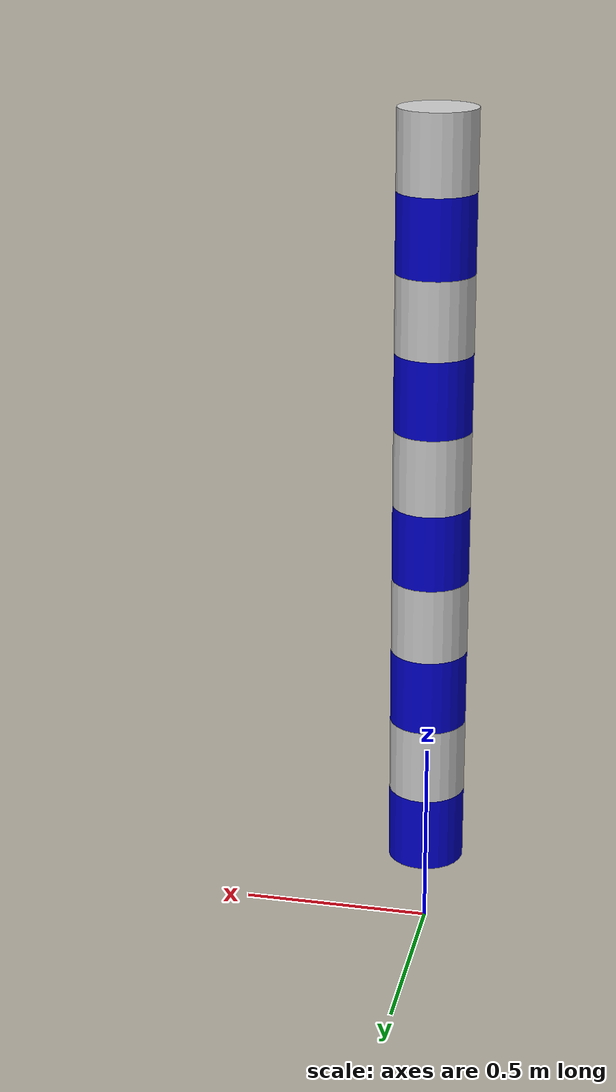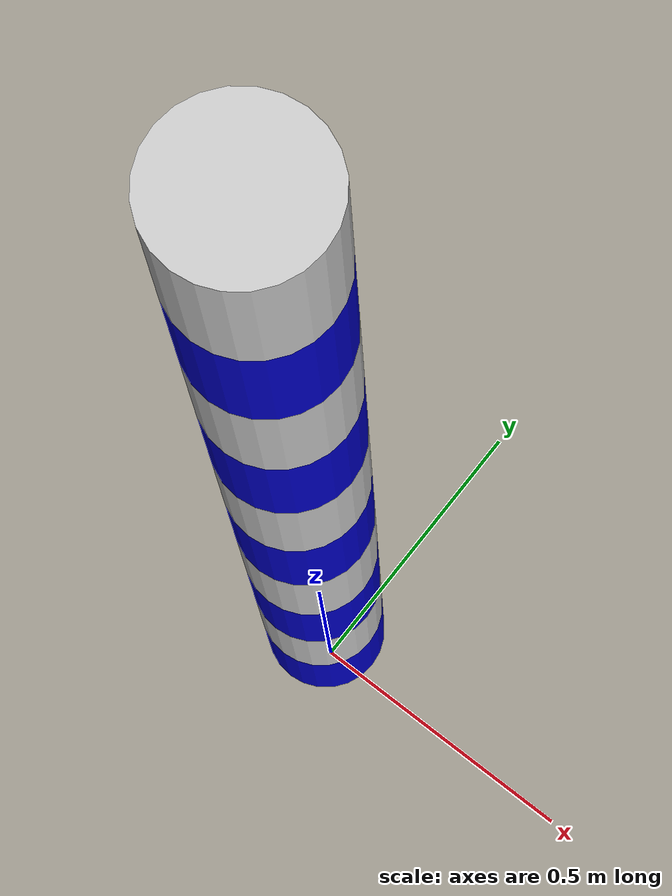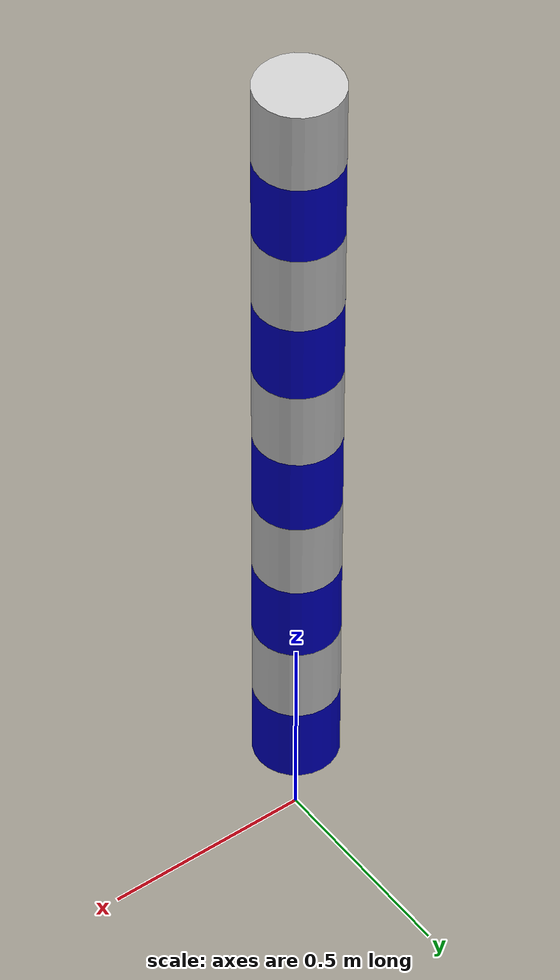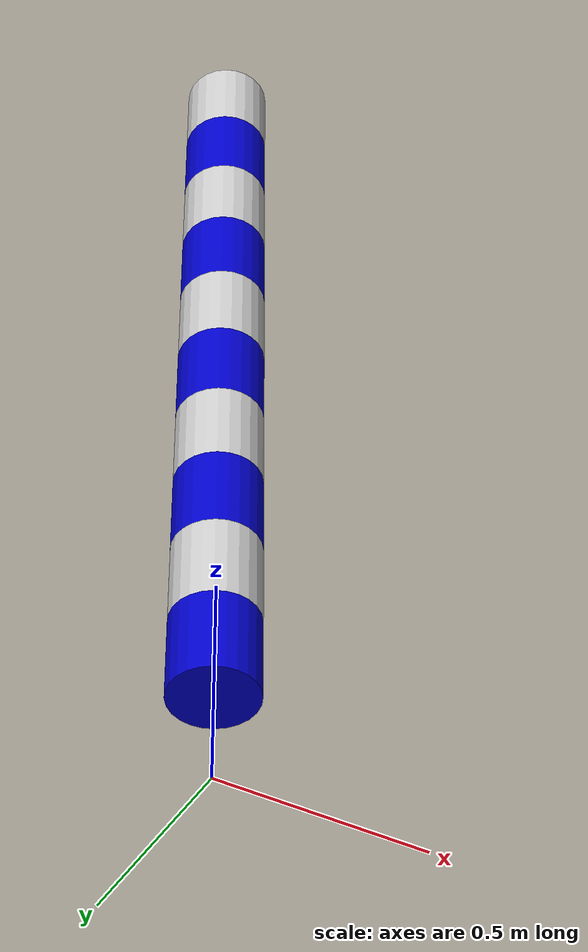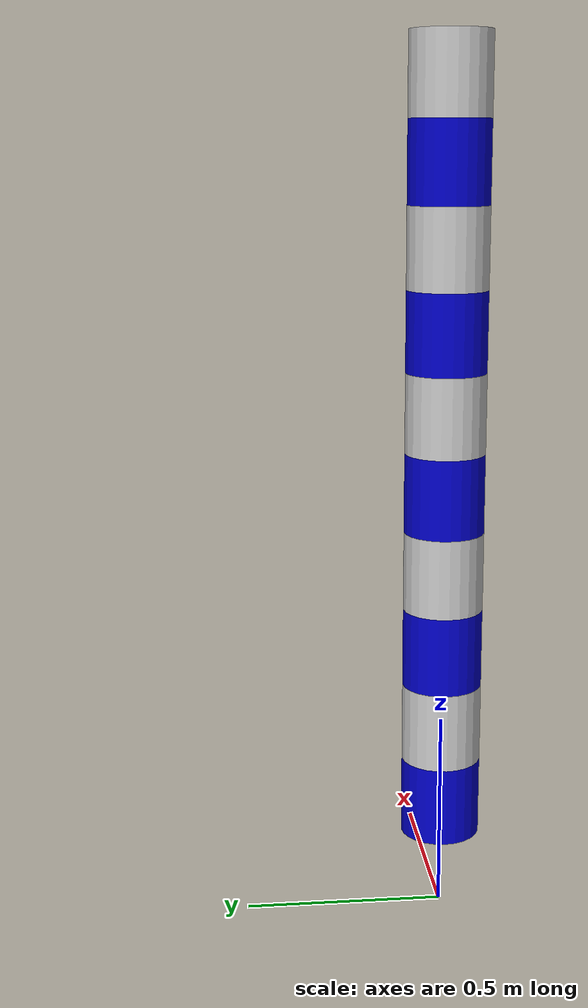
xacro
<?xml version="1.0"?>
<!--URDF MODEL 13 DoFs-->
<robot xmlns:xacro="http://ros.org/wiki/xacro" name="robot3dof" >

<xacro:property name="arm_length" value="2" />
<xacro:property name="vertebrae" value="5" />

<xacro:include filename="$(find high_dof_description)/urdf/antro3.xacro" />
<xacro:include filename="$(find high_dof_description)/urdf/mobile_base.xacro" />
<link name="world" />

<xacro:mobile_base mobile="false" parent="world" child="a_mount_flange"/>

<xacro:antro3 prefix="a_" joint_limited="true" upper_arm_length="${0.5*arm_length/vertebrae}"  forearm_length="${0.5*arm_length/vertebrae}"/>

<joint name="b_fixed" type="fixed">
  <origin xyz="0 0 0" rpy="0 0 0" />
  <parent link="a_flange" />
  <child link="b_mount_flange" />
</joint>
<xacro:antro3 prefix="b_" joint_limited="true" upper_arm_length="${0.5*arm_length/vertebrae}"  forearm_length="${0.5*arm_length/vertebrae}"/>

<joint name="c_fixed" type="fixed">
  <origin xyz="0 0 0" rpy="0 0 0" />
  <parent link="b_flange" />
  <child link="c_mount_flange" />
</joint>
<xacro:antro3 prefix="c_" joint_limited="true" upper_arm_length="${0.5*arm_length/vertebrae}"  forearm_length="${0.5*arm_length/vertebrae}"/>

<joint name="d_fixed" type="fixed">
  <origin xyz="0 0 0" rpy="0 0 0" />
  <parent link="c_flange" />
  <child link="d_mount_flange" />
</joint>
<xacro:antro3 prefix="d_" joint_limited="true" upper_arm_length="${0.5*arm_length/vertebrae}"  forearm_length="${0.5*arm_length/vertebrae}"/>

<joint name="e_fixed" type="fixed">
  <origin xyz="0 0 0" rpy="0 0 0" />
  <parent link="d_flange" />
  <child link="e_mount_flange" />
</joint>
<xacro:antro3 prefix="e_" joint_limited="true" upper_arm_length="${0.5*arm_length/vertebrae}"  forearm_length="${0.5*arm_length/vertebrae}"/>

<joint name="last_flange_joint" type="fixed">
  <origin xyz="0 0 0" rpy="0 0 0" />
  <parent link="e_flange" />
  <child link="flange" />
</joint>
<link name="flange"/>

<xacro:include filename="$(find high_dof_description)/urdf/roscontrol.gazebo" />

</robot>

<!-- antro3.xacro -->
<!--URDF MODEL only arms-->
<robot xmlns:xacro="http://wiki.ros.org/xacro">
  <xacro:macro name="antro3"
  params="joint_limited prefix upper_arm_length:=${0.35} upper_arm_radius:=${0.1} forearm_length:=${0.35} forearm_radius:=${0.1}">

    <link name="${prefix}mount_flange" >
<inertial>
  <mass value="0.01" />
  <origin xyz="0 0 0" rpy="0 0 0" />
  <inertia ixx="0.01" iyy="0.01" izz="0.01"
  ixy="0" ixz="0" iyz="0" />
</inertial>
</link>

<joint name="${prefix}joint_1" type="revolute">
  <origin xyz="0 0 0" rpy="${-pi*0.5} 0 0" />
  <parent link="${prefix}mount_flange" />
  <child link="${prefix}upper_arm_f1" />
  <dynamics damping="0.1" friction="0.1" />
  <xacro:unless value="${joint_limited}">
    <limit effort="3000000" velocity="1.0" lower="-3.1416"
    upper="3.1416" />
  </xacro:unless>
  <xacro:if value="${joint_limited}">
    <limit effort="3000000" velocity="10.0" lower="-1.5708"
    upper="1.5708" />
  </xacro:if>
  <axis xyz="0 0 1" />
  <dynamics damping="0.7"/>
</joint>

<link name="${prefix}upper_arm_f1" >
<inertial>
  <mass value="0.01" />
  <origin xyz="0 0 0" rpy="0 0 0" />
  <inertia ixx="0.01" iyy="0.01" izz="0.01"
  ixy="0" ixz="0" iyz="0" />
</inertial>
</link>

<joint name="${prefix}joint_2" type="revolute">
  <origin xyz="0 0 0" rpy="0 0 0" />
  <parent link="${prefix}upper_arm_f1" />
  <child link="${prefix}upper_arm" />
  <dynamics damping="0.1" friction="0.1" />
  <xacro:unless value="${joint_limited}">
    <limit effort="3000000" velocity="1.0" lower="-3.1416"
    upper="3.1416" />
  </xacro:unless>
  <xacro:if value="${joint_limited}">
    <limit effort="3000000" velocity="10.0" lower="-1.5708"
    upper="1.5708" />
  </xacro:if>
  <axis xyz="1 0 0" />
  <dynamics damping="0.7"/>
</joint>

<link name="${prefix}upper_arm">
  <inertial>
    <mass value="${6.5*upper_arm_length}" />
    <origin xyz="0 0 0" rpy="0 0 0" />
    <inertia ixx="0.019063" iyy="0.0013033" izz="0.019063"
    ixy="0" ixz="0" iyz="0" />
  </inertial>
  <visual>
    <origin xyz="0 ${-upper_arm_length/2} 0" rpy="1.5708 0 0" />
    <geometry>
      <cylinder length="${upper_arm_length}"
      radius="${upper_arm_radius}" />
    </geometry>
    <material name="blue">
      <color rgba="0.0 0.0 0.8 1.0" />
    </material>
  </visual>
  <collision>
    <origin xyz="0 ${-upper_arm_length/2} 0" rpy="1.5708 0 0" />
    <geometry>
      <cylinder length="${-upper_arm_length}"
      radius="${upper_arm_radius}" />
    </geometry>
  </collision>
</link>

<joint name="${prefix}joint_3" type="revolute">
  <origin xyz="0 ${-upper_arm_length} 0" rpy="0 0 0" />
  <parent link="${prefix}upper_arm" />
  <child link="${prefix}forearm" />
  <dynamics damping="0.1" friction="0.1" />
  <xacro:unless value="${joint_limited}">
    <limit effort="3000000" velocity="1.0" lower="-3.1416"
    upper="3.1416" />
  </xacro:unless>
  <xacro:if value="${joint_limited}">
    <limit effort="3000000" velocity="10.0" lower="-1.5708"
    upper="1.5708" />
  </xacro:if>
  <axis xyz="1 0 0" />
  <dynamics damping="0.7"/>
</joint>

    <link name="${prefix}forearm">
      <inertial>
        <mass value="${5.2*forearm_length}" />
        <origin xyz="0 0 0" rpy="0 0 0" />
        <inertia ixx="0.0084595" iyy="0.00038616" izz="0.0084595"
        ixy="0" ixz="0" iyz="0" />
      </inertial>
      <visual>
        <origin xyz="0 ${-forearm_length/2} 0" rpy="1.5708 0 0" />
        <geometry>
          <cylinder length="${forearm_length}"
          radius="${forearm_radius}" />
        </geometry>
        <material name="grey">
          <color rgba="0.8 0.8 0.8 1.0" />
        </material>
      </visual>
      <collision>
        <origin xyz="0 ${-forearm_length/2} 0" rpy="1.5708 0 0" />
        <geometry>
          <cylinder length="${forearm_length}"
          radius="${forearm_radius}" />
        </geometry>
      </collision>
    </link>

    <joint name="${prefix}elbow_joint" type="fixed">
      <origin xyz="0 ${-forearm_length} 0" rpy="${pi*0.5} 0 0" />
      <parent link="${prefix}forearm" />
      <child link="${prefix}flange" />
    </joint>

<link name="${prefix}flange">
<inertial>
  <mass value="0.01" />
  <origin xyz="0 0 0" rpy="0 0 0" />
  <inertia ixx="0.01" iyy="0.01" izz="0.01"
  ixy="0" ixz="0" iyz="0" />
</inertial>
</link>

<transmission name="${prefix}tran_1">
  <type>transmission_interface/SimpleTransmission</type>
  <joint name="${prefix}joint_1">
    <hardwareInterface>hardware_interface/EffortJointInterface</hardwareInterface>
  </joint>
  <actuator name="${prefix}motor_1">
    <hardwareInterface>hardware_interface/EffortJointInterface</hardwareInterface>
    <mechanicalReduction>1</mechanicalReduction>
  </actuator>
</transmission>

<transmission name="${prefix}tran_2">
  <type>transmission_interface/SimpleTransmission</type>
  <joint name="${prefix}joint_2">
    <hardwareInterface>hardware_interface/EffortJointInterface</hardwareInterface>
  </joint>
  <actuator name="${prefix}motor_2">
    <hardwareInterface>hardware_interface/EffortJointInterface</hardwareInterface>
    <mechanicalReduction>1</mechanicalReduction>
  </actuator>
</transmission>

<transmission name="${prefix}tran_3">
  <type>transmission_interface/SimpleTransmission</type>
  <joint name="${prefix}joint_3">
    <hardwareInterface>hardware_interface/EffortJointInterface</hardwareInterface>
  </joint>
  <actuator name="${prefix}motor_3">
    <hardwareInterface>hardware_interface/EffortJointInterface</hardwareInterface>
    <mechanicalReduction>1</mechanicalReduction>
  </actuator>
</transmission>

<xacro:include filename="$(find high_dof_description)/urdf/antro3.gazebo" />

</xacro:macro>

</robot>

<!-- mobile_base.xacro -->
<!--URDF MODEL only arms-->
<robot xmlns:xacro="http://wiki.ros.org/xacro">
  <xacro:macro name="mobile_base"
  params="mobile parent child">

<xacro:unless value="${mobile}">
<joint name="base_joint" type="fixed">
  <origin xyz="0 0 0.2" rpy="0 0 0" />
  <parent link="${parent}" />
  <child link="${child}" />
</joint>
</xacro:unless>

<xacro:if value="${mobile}">
<joint name="joint_traslx" type="prismatic">
  <origin xyz="0 0 0" rpy="0 0 0"/>
  <parent link="${parent}"/>
  <child link="base_f1"/>
  <dynamics damping="0.1" friction="0.1"/>
  <limit effort="3000" velocity="2.0" lower="-2" upper="2" />
  <axis xyz="1 0 0" />
</joint>
<link name="base_f1" />

<joint name="joint_trasly" type="prismatic">
  <origin xyz="0 0 0" rpy="0 0 0"/>
  <parent link="base_f1"/>
  <child link="base_f2"/>
  <dynamics damping="0.1" friction="0.1"/>
  <limit effort="3000" velocity="2.0" lower="-2" upper="2" />
  <axis xyz="0 1 0" />
</joint>
<link name="base_f2" />

<joint name="a_fixed" type="fixed">
  <origin xyz="0 0 0.2" rpy="0 0 0" />
  <parent link="base_f2" />
  <child link="${child}" />
</joint>
</xacro:if>

</xacro:macro>

</robot>
